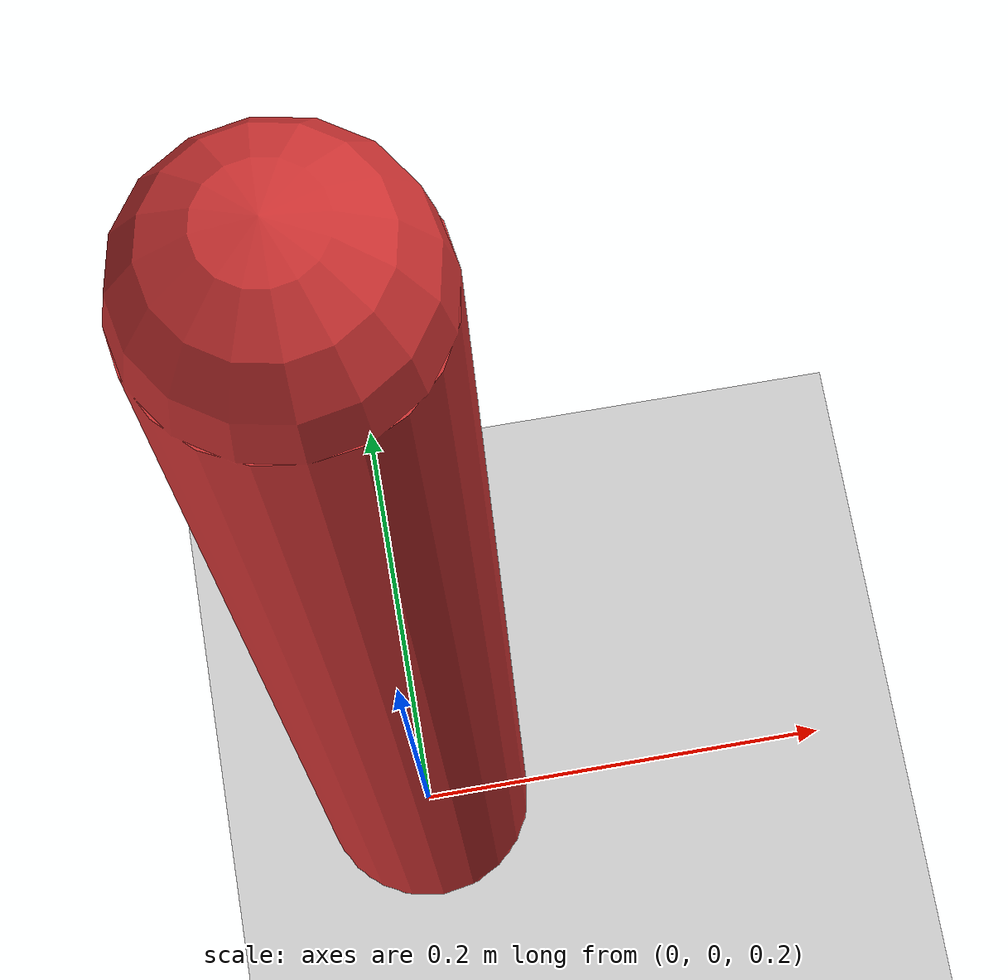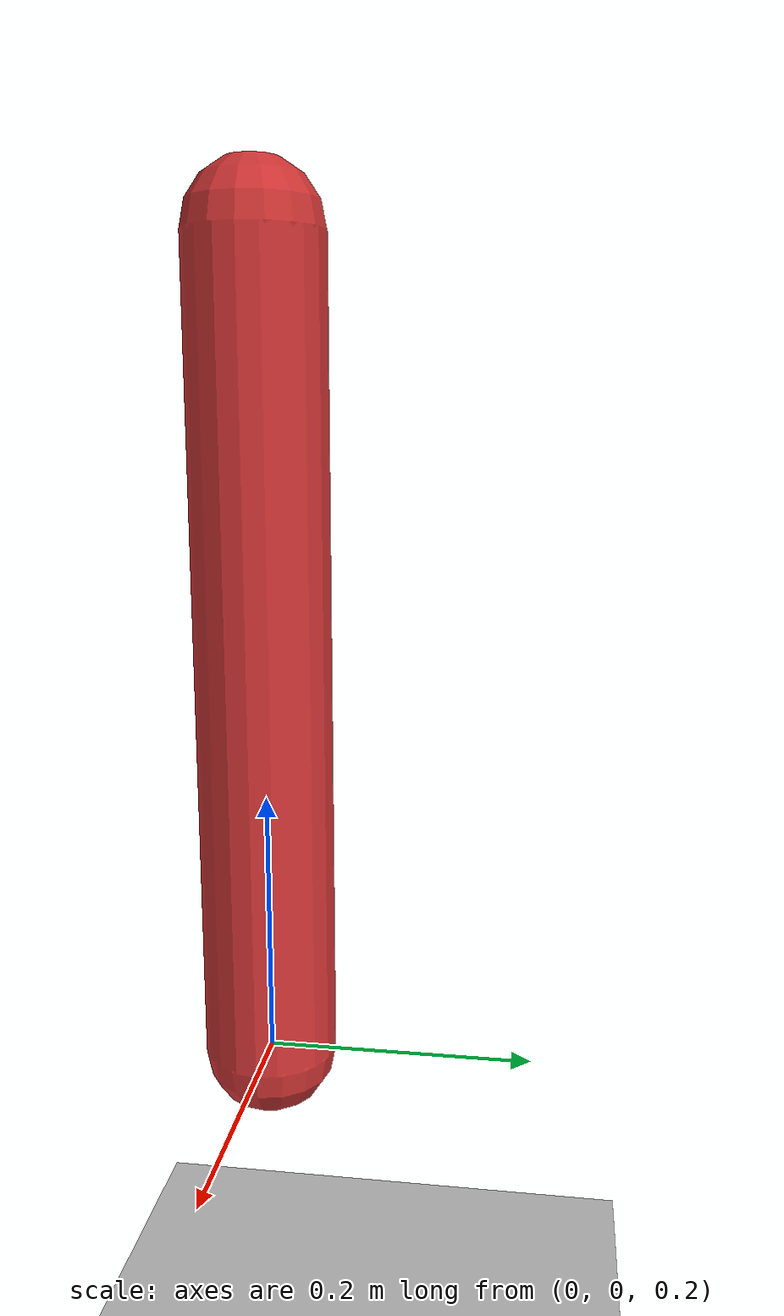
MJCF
<mujoco model="hinge_rod">
  <compiler angle="degree"/>

  <option timestep="0.002" gravity="0 0 -9.81"/>

  <worldbody>
    <!-- 地面 -->
    <geom name="floor"
          type="plane"
          size="2 2 0.1"
          rgba="0.8 0.8 0.8 1"/>

    <!-- 旋转杆 -->
    <body name="hinge_rod" pos="0 0 0.8">
      <joint name="rod_hinge"
            type="hinge"
            axis="0 1 0"
            damping="0.05"/>
      <geom name="rod_geom"
            type="capsule"
            fromto="0 0 0  0 0 -0.6"
            size="0.05"
            mass="0.5"
            rgba="0.8 0.2 0.2 1"/>
    </body>
  </worldbody>
  <actuator>
    <motor joint="rod_hinge" ctrlrange="-5 5" gear="1"/>
  </actuator>
</mujoco>
